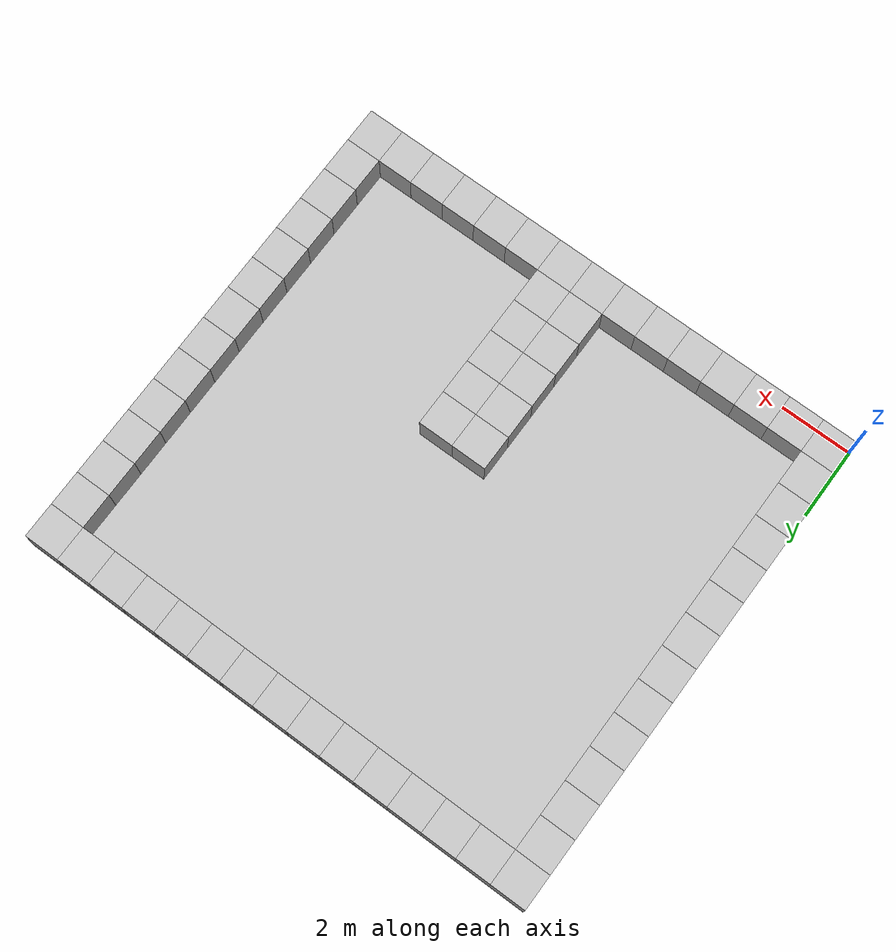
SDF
<sdf version="1.4">
  <world name="world_test_esq_ext">
    <light name="sun" type="directional">
      <cast_shadows>1</cast_shadows>
      <diffuse>0.8 0.8 0.8 1</diffuse>
      <specular>0.1 0.1 0.1 1</specular>
      <attenuation>
        <range>1000</range>
        <constant>0.9</constant>
        <linear>0.01</linear>
        <quadratic>0.001</quadratic>
      </attenuation>
      <direction>-0.5 0.5 -1</direction>
    </light>
    <plugin
      filename="ignition-gazebo-physics-system"
      name="ignition::gazebo::systems::Physics">
    </plugin>
    <plugin
      filename="ignition-gazebo-user-commands-system"
      name="ignition::gazebo::systems::UserCommands">
    </plugin>
    <plugin
      filename="ignition-gazebo-scene-broadcaster-system"
      name="ignition::gazebo::systems::SceneBroadcaster">
    </plugin>
    <plugin
      filename="ignition-gazebo-sensors-system"
      name="ignition::gazebo::systems::Sensors">
      <render_engine>ogre2</render_engine>
    </plugin>

    <model name="floor">
      <pose>7.5 7.0 -0.0625 0 0 0</pose>
      <static>true</static>
      <link name="link">
        <collision name="collision">
          <geometry>
            <box>
              <size>15.0 14.0 0.125</size>
            </box>
          </geometry>
        </collision>
        <visual name="visual">
          <geometry>
            <box>
              <size>15.0 14.0 0.125</size>
            </box>
          </geometry>
        </visual>
      </link>
    </model>
    <model name="box_0_0">
      <pose>0.5 0.5 0.5 0 0 0</pose>
      <static>true</static>
      <link name="link">
        <collision name="collision">
          <geometry>
            <box>
              <size>1.0 1.0 1.0</size>
            </box>
          </geometry>
        </collision>
        <visual name="visual">
          <geometry>
            <box>
              <size>1.0 1.0 1.0</size>
            </box>
          </geometry>
        </visual>
      </link>
    </model>
    <model name="box_0_1">
      <pose>0.5 1.5 0.5 0 0 0</pose>
      <static>true</static>
      <link name="link">
        <collision name="collision">
          <geometry>
            <box>
              <size>1.0 1.0 1.0</size>
            </box>
          </geometry>
        </collision>
        <visual name="visual">
          <geometry>
            <box>
              <size>1.0 1.0 1.0</size>
            </box>
          </geometry>
        </visual>
      </link>
    </model>
    <model name="box_0_2">
      <pose>0.5 2.5 0.5 0 0 0</pose>
      <static>true</static>
      <link name="link">
        <collision name="collision">
          <geometry>
            <box>
              <size>1.0 1.0 1.0</size>
            </box>
          </geometry>
        </collision>
        <visual name="visual">
          <geometry>
            <box>
              <size>1.0 1.0 1.0</size>
            </box>
          </geometry>
        </visual>
      </link>
    </model>
    <model name="box_0_3">
      <pose>0.5 3.5 0.5 0 0 0</pose>
      <static>true</static>
      <link name="link">
        <collision name="collision">
          <geometry>
            <box>
              <size>1.0 1.0 1.0</size>
            </box>
          </geometry>
        </collision>
        <visual name="visual">
          <geometry>
            <box>
              <size>1.0 1.0 1.0</size>
            </box>
          </geometry>
        </visual>
      </link>
    </model>
    <model name="box_0_4">
      <pose>0.5 4.5 0.5 0 0 0</pose>
      <static>true</static>
      <link name="link">
        <collision name="collision">
          <geometry>
            <box>
              <size>1.0 1.0 1.0</size>
            </box>
          </geometry>
        </collision>
        <visual name="visual">
          <geometry>
            <box>
              <size>1.0 1.0 1.0</size>
            </box>
          </geometry>
        </visual>
      </link>
    </model>
    <model name="box_0_5">
      <pose>0.5 5.5 0.5 0 0 0</pose>
      <static>true</static>
      <link name="link">
        <collision name="collision">
          <geometry>
            <box>
              <size>1.0 1.0 1.0</size>
            </box>
          </geometry>
        </collision>
        <visual name="visual">
          <geometry>
            <box>
              <size>1.0 1.0 1.0</size>
            </box>
          </geometry>
        </visual>
      </link>
    </model>
    <model name="box_0_6">
      <pose>0.5 6.5 0.5 0 0 0</pose>
      <static>true</static>
      <link name="link">
        <collision name="collision">
          <geometry>
            <box>
              <size>1.0 1.0 1.0</size>
            </box>
          </geometry>
        </collision>
        <visual name="visual">
          <geometry>
            <box>
              <size>1.0 1.0 1.0</size>
            </box>
          </geometry>
        </visual>
      </link>
    </model>
    <model name="box_0_7">
      <pose>0.5 7.5 0.5 0 0 0</pose>
      <static>true</static>
      <link name="link">
        <collision name="collision">
          <geometry>
            <box>
              <size>1.0 1.0 1.0</size>
            </box>
          </geometry>
        </collision>
        <visual name="visual">
          <geometry>
            <box>
              <size>1.0 1.0 1.0</size>
            </box>
          </geometry>
        </visual>
      </link>
    </model>
    <model name="box_0_8">
      <pose>0.5 8.5 0.5 0 0 0</pose>
      <static>true</static>
      <link name="link">
        <collision name="collision">
          <geometry>
            <box>
              <size>1.0 1.0 1.0</size>
            </box>
          </geometry>
        </collision>
        <visual name="visual">
          <geometry>
            <box>
              <size>1.0 1.0 1.0</size>
            </box>
          </geometry>
        </visual>
      </link>
    </model>
    <model name="box_0_9">
      <pose>0.5 9.5 0.5 0 0 0</pose>
      <static>true</static>
      <link name="link">
        <collision name="collision">
          <geometry>
            <box>
              <size>1.0 1.0 1.0</size>
            </box>
          </geometry>
        </collision>
        <visual name="visual">
          <geometry>
            <box>
              <size>1.0 1.0 1.0</size>
            </box>
          </geometry>
        </visual>
      </link>
    </model>
    <model name="box_0_10">
      <pose>0.5 10.5 0.5 0 0 0</pose>
      <static>true</static>
      <link name="link">
        <collision name="collision">
          <geometry>
            <box>
              <size>1.0 1.0 1.0</size>
            </box>
          </geometry>
        </collision>
        <visual name="visual">
          <geometry>
            <box>
              <size>1.0 1.0 1.0</size>
            </box>
          </geometry>
        </visual>
      </link>
    </model>
    <model name="box_0_11">
      <pose>0.5 11.5 0.5 0 0 0</pose>
      <static>true</static>
      <link name="link">
        <collision name="collision">
          <geometry>
            <box>
              <size>1.0 1.0 1.0</size>
            </box>
          </geometry>
        </collision>
        <visual name="visual">
          <geometry>
            <box>
              <size>1.0 1.0 1.0</size>
            </box>
          </geometry>
        </visual>
      </link>
    </model>
    <model name="box_0_12">
      <pose>0.5 12.5 0.5 0 0 0</pose>
      <static>true</static>
      <link name="link">
        <collision name="collision">
          <geometry>
            <box>
              <size>1.0 1.0 1.0</size>
            </box>
          </geometry>
        </collision>
        <visual name="visual">
          <geometry>
            <box>
              <size>1.0 1.0 1.0</size>
            </box>
          </geometry>
        </visual>
      </link>
    </model>
    <model name="box_0_13">
      <pose>0.5 13.5 0.5 0 0 0</pose>
      <static>true</static>
      <link name="link">
        <collision name="collision">
          <geometry>
            <box>
              <size>1.0 1.0 1.0</size>
            </box>
          </geometry>
        </collision>
        <visual name="visual">
          <geometry>
            <box>
              <size>1.0 1.0 1.0</size>
            </box>
          </geometry>
        </visual>
      </link>
    </model>
    <model name="box_1_0">
      <pose>1.5 0.5 0.5 0 0 0</pose>
      <static>true</static>
      <link name="link">
        <collision name="collision">
          <geometry>
            <box>
              <size>1.0 1.0 1.0</size>
            </box>
          </geometry>
        </collision>
        <visual name="visual">
          <geometry>
            <box>
              <size>1.0 1.0 1.0</size>
            </box>
          </geometry>
        </visual>
      </link>
    </model>
    <model name="box_1_13">
      <pose>1.5 13.5 0.5 0 0 0</pose>
      <static>true</static>
      <link name="link">
        <collision name="collision">
          <geometry>
            <box>
              <size>1.0 1.0 1.0</size>
            </box>
          </geometry>
        </collision>
        <visual name="visual">
          <geometry>
            <box>
              <size>1.0 1.0 1.0</size>
            </box>
          </geometry>
        </visual>
      </link>
    </model>
    <model name="box_2_0">
      <pose>2.5 0.5 0.5 0 0 0</pose>
      <static>true</static>
      <link name="link">
        <collision name="collision">
          <geometry>
            <box>
              <size>1.0 1.0 1.0</size>
            </box>
          </geometry>
        </collision>
        <visual name="visual">
          <geometry>
            <box>
              <size>1.0 1.0 1.0</size>
            </box>
          </geometry>
        </visual>
      </link>
    </model>
    <model name="box_2_13">
      <pose>2.5 13.5 0.5 0 0 0</pose>
      <static>true</static>
      <link name="link">
        <collision name="collision">
          <geometry>
            <box>
              <size>1.0 1.0 1.0</size>
            </box>
          </geometry>
        </collision>
        <visual name="visual">
          <geometry>
            <box>
              <size>1.0 1.0 1.0</size>
            </box>
          </geometry>
        </visual>
      </link>
    </model>
    <model name="box_3_0">
      <pose>3.5 0.5 0.5 0 0 0</pose>
      <static>true</static>
      <link name="link">
        <collision name="collision">
          <geometry>
            <box>
              <size>1.0 1.0 1.0</size>
            </box>
          </geometry>
        </collision>
        <visual name="visual">
          <geometry>
            <box>
              <size>1.0 1.0 1.0</size>
            </box>
          </geometry>
        </visual>
      </link>
    </model>
    <model name="box_3_13">
      <pose>3.5 13.5 0.5 0 0 0</pose>
      <static>true</static>
      <link name="link">
        <collision name="collision">
          <geometry>
            <box>
              <size>1.0 1.0 1.0</size>
            </box>
          </geometry>
        </collision>
        <visual name="visual">
          <geometry>
            <box>
              <size>1.0 1.0 1.0</size>
            </box>
          </geometry>
        </visual>
      </link>
    </model>
    <model name="box_4_0">
      <pose>4.5 0.5 0.5 0 0 0</pose>
      <static>true</static>
      <link name="link">
        <collision name="collision">
          <geometry>
            <box>
              <size>1.0 1.0 1.0</size>
            </box>
          </geometry>
        </collision>
        <visual name="visual">
          <geometry>
            <box>
              <size>1.0 1.0 1.0</size>
            </box>
          </geometry>
        </visual>
      </link>
    </model>
    <model name="box_4_13">
      <pose>4.5 13.5 0.5 0 0 0</pose>
      <static>true</static>
      <link name="link">
        <collision name="collision">
          <geometry>
            <box>
              <size>1.0 1.0 1.0</size>
            </box>
          </geometry>
        </collision>
        <visual name="visual">
          <geometry>
            <box>
              <size>1.0 1.0 1.0</size>
            </box>
          </geometry>
        </visual>
      </link>
    </model>
    <model name="box_5_0">
      <pose>5.5 0.5 0.5 0 0 0</pose>
      <static>true</static>
      <link name="link">
        <collision name="collision">
          <geometry>
            <box>
              <size>1.0 1.0 1.0</size>
            </box>
          </geometry>
        </collision>
        <visual name="visual">
          <geometry>
            <box>
              <size>1.0 1.0 1.0</size>
            </box>
          </geometry>
        </visual>
      </link>
    </model>
    <model name="box_5_13">
      <pose>5.5 13.5 0.5 0 0 0</pose>
      <static>true</static>
      <link name="link">
        <collision name="collision">
          <geometry>
            <box>
              <size>1.0 1.0 1.0</size>
            </box>
          </geometry>
        </collision>
        <visual name="visual">
          <geometry>
            <box>
              <size>1.0 1.0 1.0</size>
            </box>
          </geometry>
        </visual>
      </link>
    </model>
    <model name="box_6_0">
      <pose>6.5 0.5 0.5 0 0 0</pose>
      <static>true</static>
      <link name="link">
        <collision name="collision">
          <geometry>
            <box>
              <size>1.0 1.0 1.0</size>
            </box>
          </geometry>
        </collision>
        <visual name="visual">
          <geometry>
            <box>
              <size>1.0 1.0 1.0</size>
            </box>
          </geometry>
        </visual>
      </link>
    </model>
    <model name="box_6_13">
      <pose>6.5 13.5 0.5 0 0 0</pose>
      <static>true</static>
      <link name="link">
        <collision name="collision">
          <geometry>
            <box>
              <size>1.0 1.0 1.0</size>
            </box>
          </geometry>
        </collision>
        <visual name="visual">
          <geometry>
            <box>
              <size>1.0 1.0 1.0</size>
            </box>
          </geometry>
        </visual>
      </link>
    </model>
    <model name="box_7_0">
      <pose>7.5 0.5 0.5 0 0 0</pose>
      <static>true</static>
      <link name="link">
        <collision name="collision">
          <geometry>
            <box>
              <size>1.0 1.0 1.0</size>
            </box>
          </geometry>
        </collision>
        <visual name="visual">
          <geometry>
            <box>
              <size>1.0 1.0 1.0</size>
            </box>
          </geometry>
        </visual>
      </link>
    </model>
    <model name="box_7_1">
      <pose>7.5 1.5 0.5 0 0 0</pose>
      <static>true</static>
      <link name="link">
        <collision name="collision">
          <geometry>
            <box>
              <size>1.0 1.0 1.0</size>
            </box>
          </geometry>
        </collision>
        <visual name="visual">
          <geometry>
            <box>
              <size>1.0 1.0 1.0</size>
            </box>
          </geometry>
        </visual>
      </link>
    </model>
    <model name="box_7_2">
      <pose>7.5 2.5 0.5 0 0 0</pose>
      <static>true</static>
      <link name="link">
        <collision name="collision">
          <geometry>
            <box>
              <size>1.0 1.0 1.0</size>
            </box>
          </geometry>
        </collision>
        <visual name="visual">
          <geometry>
            <box>
              <size>1.0 1.0 1.0</size>
            </box>
          </geometry>
        </visual>
      </link>
    </model>
    <model name="box_7_3">
      <pose>7.5 3.5 0.5 0 0 0</pose>
      <static>true</static>
      <link name="link">
        <collision name="collision">
          <geometry>
            <box>
              <size>1.0 1.0 1.0</size>
            </box>
          </geometry>
        </collision>
        <visual name="visual">
          <geometry>
            <box>
              <size>1.0 1.0 1.0</size>
            </box>
          </geometry>
        </visual>
      </link>
    </model>
    <model name="box_7_4">
      <pose>7.5 4.5 0.5 0 0 0</pose>
      <static>true</static>
      <link name="link">
        <collision name="collision">
          <geometry>
            <box>
              <size>1.0 1.0 1.0</size>
            </box>
          </geometry>
        </collision>
        <visual name="visual">
          <geometry>
            <box>
              <size>1.0 1.0 1.0</size>
            </box>
          </geometry>
        </visual>
      </link>
    </model>
    <model name="box_7_5">
      <pose>7.5 5.5 0.5 0 0 0</pose>
      <static>true</static>
      <link name="link">
        <collision name="collision">
          <geometry>
            <box>
              <size>1.0 1.0 1.0</size>
            </box>
          </geometry>
        </collision>
        <visual name="visual">
          <geometry>
            <box>
              <size>1.0 1.0 1.0</size>
            </box>
          </geometry>
        </visual>
      </link>
    </model>
    <model name="box_7_13">
      <pose>7.5 13.5 0.5 0 0 0</pose>
      <static>true</static>
      <link name="link">
        <collision name="collision">
          <geometry>
            <box>
              <size>1.0 1.0 1.0</size>
            </box>
          </geometry>
        </collision>
        <visual name="visual">
          <geometry>
            <box>
              <size>1.0 1.0 1.0</size>
            </box>
          </geometry>
        </visual>
      </link>
    </model>
    <model name="box_8_0">
      <pose>8.5 0.5 0.5 0 0 0</pose>
      <static>true</static>
      <link name="link">
        <collision name="collision">
          <geometry>
            <box>
              <size>1.0 1.0 1.0</size>
            </box>
          </geometry>
        </collision>
        <visual name="visual">
          <geometry>
            <box>
              <size>1.0 1.0 1.0</size>
            </box>
          </geometry>
        </visual>
      </link>
    </model>
    <model name="box_8_1">
      <pose>8.5 1.5 0.5 0 0 0</pose>
      <static>true</static>
      <link name="link">
        <collision name="collision">
          <geometry>
            <box>
              <size>1.0 1.0 1.0</size>
            </box>
          </geometry>
        </collision>
        <visual name="visual">
          <geometry>
            <box>
              <size>1.0 1.0 1.0</size>
            </box>
          </geometry>
        </visual>
      </link>
    </model>
    <model name="box_8_2">
      <pose>8.5 2.5 0.5 0 0 0</pose>
      <static>true</static>
      <link name="link">
        <collision name="collision">
          <geometry>
            <box>
              <size>1.0 1.0 1.0</size>
            </box>
          </geometry>
        </collision>
        <visual name="visual">
          <geometry>
            <box>
              <size>1.0 1.0 1.0</size>
            </box>
          </geometry>
        </visual>
      </link>
    </model>
    <model name="box_8_3">
      <pose>8.5 3.5 0.5 0 0 0</pose>
      <static>true</static>
      <link name="link">
        <collision name="collision">
          <geometry>
            <box>
              <size>1.0 1.0 1.0</size>
            </box>
          </geometry>
        </collision>
        <visual name="visual">
          <geometry>
            <box>
              <size>1.0 1.0 1.0</size>
            </box>
          </geometry>
        </visual>
      </link>
    </model>
    <model name="box_8_4">
      <pose>8.5 4.5 0.5 0 0 0</pose>
      <static>true</static>
      <link name="link">
        <collision name="collision">
          <geometry>
            <box>
              <size>1.0 1.0 1.0</size>
            </box>
          </geometry>
        </collision>
        <visual name="visual">
          <geometry>
            <box>
              <size>1.0 1.0 1.0</size>
            </box>
          </geometry>
        </visual>
      </link>
    </model>
    <model name="box_8_5">
      <pose>8.5 5.5 0.5 0 0 0</pose>
      <static>true</static>
      <link name="link">
        <collision name="collision">
          <geometry>
            <box>
              <size>1.0 1.0 1.0</size>
            </box>
          </geometry>
        </collision>
        <visual name="visual">
          <geometry>
            <box>
              <size>1.0 1.0 1.0</size>
            </box>
          </geometry>
        </visual>
      </link>
    </model>
    <model name="box_8_13">
      <pose>8.5 13.5 0.5 0 0 0</pose>
      <static>true</static>
      <link name="link">
        <collision name="collision">
          <geometry>
            <box>
              <size>1.0 1.0 1.0</size>
            </box>
          </geometry>
        </collision>
        <visual name="visual">
          <geometry>
            <box>
              <size>1.0 1.0 1.0</size>
            </box>
          </geometry>
        </visual>
      </link>
    </model>
    <model name="box_9_0">
      <pose>9.5 0.5 0.5 0 0 0</pose>
      <static>true</static>
      <link name="link">
        <collision name="collision">
          <geometry>
            <box>
              <size>1.0 1.0 1.0</size>
            </box>
          </geometry>
        </collision>
        <visual name="visual">
          <geometry>
            <box>
              <size>1.0 1.0 1.0</size>
            </box>
          </geometry>
        </visual>
      </link>
    </model>
    <model name="box_9_13">
      <pose>9.5 13.5 0.5 0 0 0</pose>
      <static>true</static>
      <link name="link">
        <collision name="collision">
          <geometry>
            <box>
              <size>1.0 1.0 1.0</size>
            </box>
          </geometry>
        </collision>
        <visual name="visual">
          <geometry>
            <box>
              <size>1.0 1.0 1.0</size>
            </box>
          </geometry>
        </visual>
      </link>
    </model>
    <model name="box_10_0">
      <pose>10.5 0.5 0.5 0 0 0</pose>
      <static>true</static>
      <link name="link">
        <collision name="collision">
          <geometry>
            <box>
              <size>1.0 1.0 1.0</size>
            </box>
          </geometry>
        </collision>
        <visual name="visual">
          <geometry>
            <box>
              <size>1.0 1.0 1.0</size>
            </box>
          </geometry>
        </visual>
      </link>
    </model>
    <model name="box_10_13">
      <pose>10.5 13.5 0.5 0 0 0</pose>
      <static>true</static>
      <link name="link">
        <collision name="collision">
          <geometry>
            <box>
              <size>1.0 1.0 1.0</size>
            </box>
          </geometry>
        </collision>
        <visual name="visual">
          <geometry>
            <box>
              <size>1.0 1.0 1.0</size>
            </box>
          </geometry>
        </visual>
      </link>
    </model>
    <model name="box_11_0">
      <pose>11.5 0.5 0.5 0 0 0</pose>
      <static>true</static>
      <link name="link">
        <collision name="collision">
          <geometry>
            <box>
              <size>1.0 1.0 1.0</size>
            </box>
          </geometry>
        </collision>
        <visual name="visual">
          <geometry>
            <box>
              <size>1.0 1.0 1.0</size>
            </box>
          </geometry>
        </visual>
      </link>
    </model>
    <model name="box_11_13">
      <pose>11.5 13.5 0.5 0 0 0</pose>
      <static>true</static>
      <link name="link">
        <collision name="collision">
          <geometry>
            <box>
              <size>1.0 1.0 1.0</size>
            </box>
          </geometry>
        </collision>
        <visual name="visual">
          <geometry>
            <box>
              <size>1.0 1.0 1.0</size>
            </box>
          </geometry>
        </visual>
      </link>
    </model>
    <model name="box_12_0">
      <pose>12.5 0.5 0.5 0 0 0</pose>
      <static>true</static>
      <link name="link">
        <collision name="collision">
          <geometry>
            <box>
              <size>1.0 1.0 1.0</size>
            </box>
          </geometry>
        </collision>
        <visual name="visual">
          <geometry>
            <box>
              <size>1.0 1.0 1.0</size>
            </box>
          </geometry>
        </visual>
      </link>
    </model>
    <model name="box_12_13">
      <pose>12.5 13.5 0.5 0 0 0</pose>
      <static>true</static>
      <link name="link">
        <collision name="collision">
          <geometry>
            <box>
              <size>1.0 1.0 1.0</size>
            </box>
          </geometry>
        </collision>
        <visual name="visual">
          <geometry>
            <box>
              <size>1.0 1.0 1.0</size>
            </box>
          </geometry>
        </visual>
      </link>
    </model>
    <model name="box_13_0">
      <pose>13.5 0.5 0.5 0 0 0</pose>
      <static>true</static>
      <link name="link">
        <collision name="collision">
          <geometry>
            <box>
              <size>1.0 1.0 1.0</size>
            </box>
          </geometry>
        </collision>
        <visual name="visual">
          <geometry>
            <box>
              <size>1.0 1.0 1.0</size>
            </box>
          </geometry>
        </visual>
      </link>
    </model>
    <model name="box_13_13">
      <pose>13.5 13.5 0.5 0 0 0</pose>
      <static>true</static>
      <link name="link">
        <collision name="collision">
          <geometry>
            <box>
              <size>1.0 1.0 1.0</size>
            </box>
          </geometry>
        </collision>
        <visual name="visual">
          <geometry>
            <box>
              <size>1.0 1.0 1.0</size>
            </box>
          </geometry>
        </visual>
      </link>
    </model>
    <model name="box_14_0">
      <pose>14.5 0.5 0.5 0 0 0</pose>
      <static>true</static>
      <link name="link">
        <collision name="collision">
          <geometry>
            <box>
              <size>1.0 1.0 1.0</size>
            </box>
          </geometry>
        </collision>
        <visual name="visual">
          <geometry>
            <box>
              <size>1.0 1.0 1.0</size>
            </box>
          </geometry>
        </visual>
      </link>
    </model>
    <model name="box_14_1">
      <pose>14.5 1.5 0.5 0 0 0</pose>
      <static>true</static>
      <link name="link">
        <collision name="collision">
          <geometry>
            <box>
              <size>1.0 1.0 1.0</size>
            </box>
          </geometry>
        </collision>
        <visual name="visual">
          <geometry>
            <box>
              <size>1.0 1.0 1.0</size>
            </box>
          </geometry>
        </visual>
      </link>
    </model>
    <model name="box_14_2">
      <pose>14.5 2.5 0.5 0 0 0</pose>
      <static>true</static>
      <link name="link">
        <collision name="collision">
          <geometry>
            <box>
              <size>1.0 1.0 1.0</size>
            </box>
          </geometry>
        </collision>
        <visual name="visual">
          <geometry>
            <box>
              <size>1.0 1.0 1.0</size>
            </box>
          </geometry>
        </visual>
      </link>
    </model>
    <model name="box_14_3">
      <pose>14.5 3.5 0.5 0 0 0</pose>
      <static>true</static>
      <link name="link">
        <collision name="collision">
          <geometry>
            <box>
              <size>1.0 1.0 1.0</size>
            </box>
          </geometry>
        </collision>
        <visual name="visual">
          <geometry>
            <box>
              <size>1.0 1.0 1.0</size>
            </box>
          </geometry>
        </visual>
      </link>
    </model>
    <model name="box_14_4">
      <pose>14.5 4.5 0.5 0 0 0</pose>
      <static>true</static>
      <link name="link">
        <collision name="collision">
          <geometry>
            <box>
              <size>1.0 1.0 1.0</size>
            </box>
          </geometry>
        </collision>
        <visual name="visual">
          <geometry>
            <box>
              <size>1.0 1.0 1.0</size>
            </box>
          </geometry>
        </visual>
      </link>
    </model>
    <model name="box_14_5">
      <pose>14.5 5.5 0.5 0 0 0</pose>
      <static>true</static>
      <link name="link">
        <collision name="collision">
          <geometry>
            <box>
              <size>1.0 1.0 1.0</size>
            </box>
          </geometry>
        </collision>
        <visual name="visual">
          <geometry>
            <box>
              <size>1.0 1.0 1.0</size>
            </box>
          </geometry>
        </visual>
      </link>
    </model>
    <model name="box_14_6">
      <pose>14.5 6.5 0.5 0 0 0</pose>
      <static>true</static>
      <link name="link">
        <collision name="collision">
          <geometry>
            <box>
              <size>1.0 1.0 1.0</size>
            </box>
          </geometry>
        </collision>
        <visual name="visual">
          <geometry>
            <box>
              <size>1.0 1.0 1.0</size>
            </box>
          </geometry>
        </visual>
      </link>
    </model>
    <model name="box_14_7">
      <pose>14.5 7.5 0.5 0 0 0</pose>
      <static>true</static>
      <link name="link">
        <collision name="collision">
          <geometry>
            <box>
              <size>1.0 1.0 1.0</size>
            </box>
          </geometry>
        </collision>
        <visual name="visual">
          <geometry>
            <box>
              <size>1.0 1.0 1.0</size>
            </box>
          </geometry>
        </visual>
      </link>
    </model>
    <model name="box_14_8">
      <pose>14.5 8.5 0.5 0 0 0</pose>
      <static>true</static>
      <link name="link">
        <collision name="collision">
          <geometry>
            <box>
              <size>1.0 1.0 1.0</size>
            </box>
          </geometry>
        </collision>
        <visual name="visual">
          <geometry>
            <box>
              <size>1.0 1.0 1.0</size>
            </box>
          </geometry>
        </visual>
      </link>
    </model>
    <model name="box_14_9">
      <pose>14.5 9.5 0.5 0 0 0</pose>
      <static>true</static>
      <link name="link">
        <collision name="collision">
          <geometry>
            <box>
              <size>1.0 1.0 1.0</size>
            </box>
          </geometry>
        </collision>
        <visual name="visual">
          <geometry>
            <box>
              <size>1.0 1.0 1.0</size>
            </box>
          </geometry>
        </visual>
      </link>
    </model>
    <model name="box_14_10">
      <pose>14.5 10.5 0.5 0 0 0</pose>
      <static>true</static>
      <link name="link">
        <collision name="collision">
          <geometry>
            <box>
              <size>1.0 1.0 1.0</size>
            </box>
          </geometry>
        </collision>
        <visual name="visual">
          <geometry>
            <box>
              <size>1.0 1.0 1.0</size>
            </box>
          </geometry>
        </visual>
      </link>
    </model>
    <model name="box_14_11">
      <pose>14.5 11.5 0.5 0 0 0</pose>
      <static>true</static>
      <link name="link">
        <collision name="collision">
          <geometry>
            <box>
              <size>1.0 1.0 1.0</size>
            </box>
          </geometry>
        </collision>
        <visual name="visual">
          <geometry>
            <box>
              <size>1.0 1.0 1.0</size>
            </box>
          </geometry>
        </visual>
      </link>
    </model>
    <model name="box_14_12">
      <pose>14.5 12.5 0.5 0 0 0</pose>
      <static>true</static>
      <link name="link">
        <collision name="collision">
          <geometry>
            <box>
              <size>1.0 1.0 1.0</size>
            </box>
          </geometry>
        </collision>
        <visual name="visual">
          <geometry>
            <box>
              <size>1.0 1.0 1.0</size>
            </box>
          </geometry>
        </visual>
      </link>
    </model>
    <model name="box_14_13">
      <pose>14.5 13.5 0.5 0 0 0</pose>
      <static>true</static>
      <link name="link">
        <collision name="collision">
          <geometry>
            <box>
              <size>1.0 1.0 1.0</size>
            </box>
          </geometry>
        </collision>
        <visual name="visual">
          <geometry>
            <box>
              <size>1.0 1.0 1.0</size>
            </box>
          </geometry>
        </visual>
      </link>
    </model>
  </world>
</sdf>
